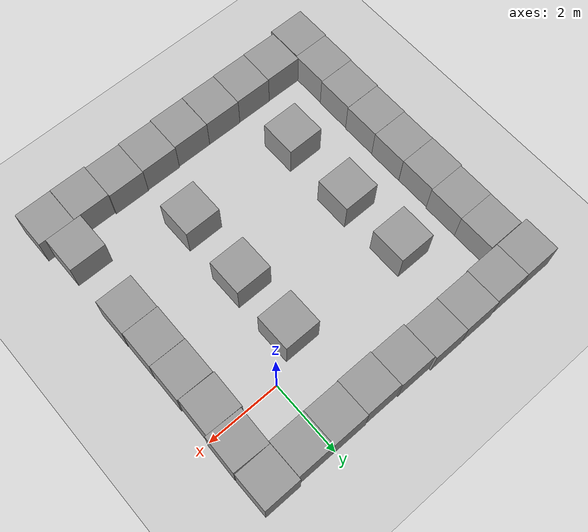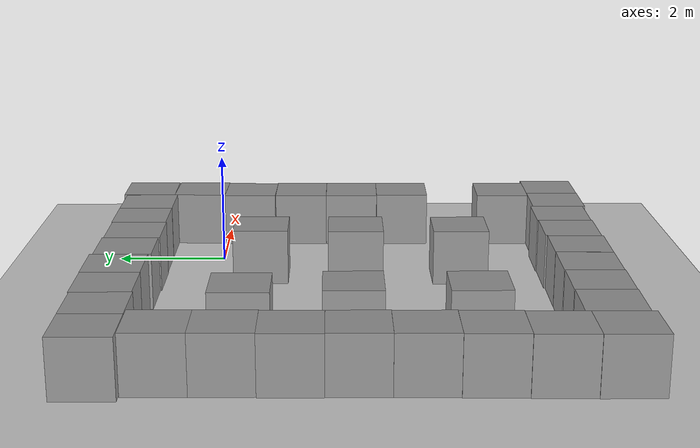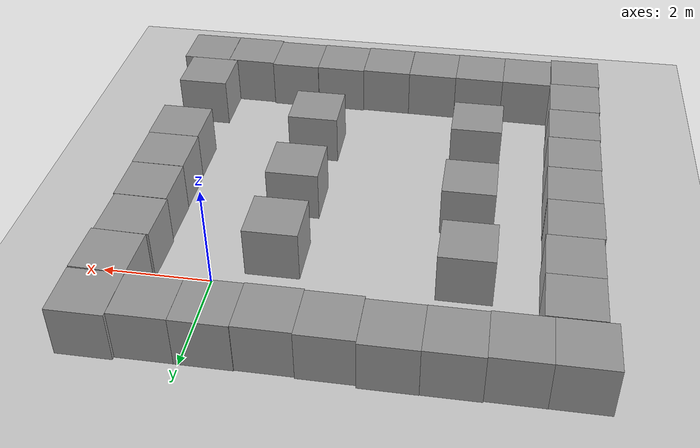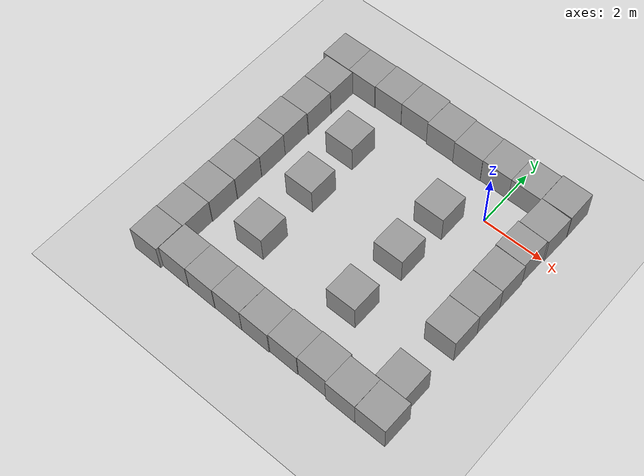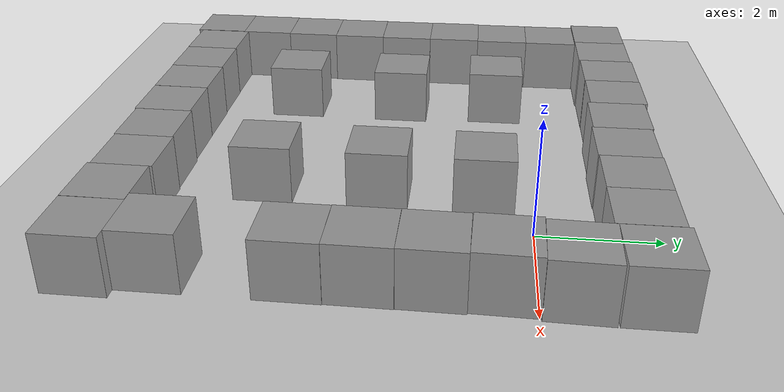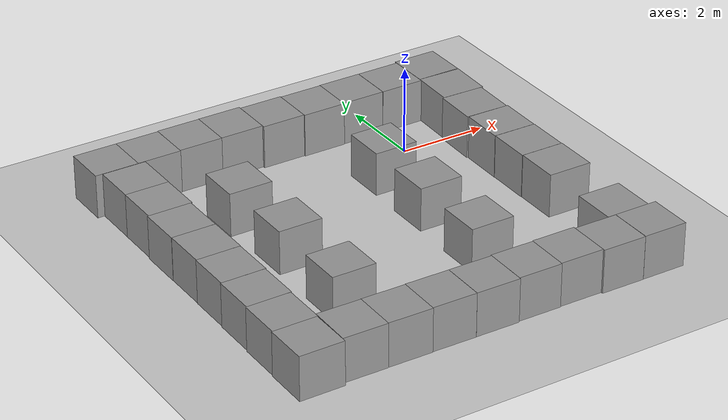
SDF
<sdf version="1.6">
 <world name="default">
  <light name="sun" type="directional">
   <pose>0 0 10 0 -0 0</pose>
   <diffuse>0.8 0.8 0.8 1</diffuse>
   <specular>0.1 0.1 0.1 1</specular>
   <attenuation>
    <range>1000</range>
    <constant>0.9</constant>
    <linear>0.01</linear>
    <quadratic>0.001</quadratic>
   </attenuation>
   <direction>-0.5 0.5 -1</direction>
  </light>
  <model name="ground_plane">
   <static>1</static>
   <link name="link">
    <collision name="collision">
     <geometry><plane><normal>0 0 1</normal><size>100 100</size></plane></geometry>
     <surface><friction><ode><mu>100</mu><mu2>50</mu2></ode></friction></surface>
    </collision>
    <visual name="visual">
     <cast_shadows>0</cast_shadows>
     <geometry><plane><normal>0 0 1</normal><size>100 100</size></plane></geometry>
     <material>
      <script><uri>file://media/materials/scripts/gazebo.material</uri><name>Gazebo/Grey</name></script>
     </material>
    </visual>
   </link>
  </model>
  <gravity>0 0 -9.8</gravity>
  <magnetic_field>6e-06 2.3e-05 -4.2e-05</magnetic_field>
  <atmosphere type="adiabatic"/>
  <physics name="default_physics" default="0" type="ode">
   <max_step_size>0.001</max_step_size>
   <real_time_factor>1</real_time_factor>
   <real_time_update_rate>1000</real_time_update_rate>
  </physics>
  <scene><ambient>0.4 0.4 0.4 1</ambient><background>0.7 0.7 0.7 1</background><shadows>1</shadows></scene>
  <spherical_coordinates>
   <surface_model>EARTH_WGS84</surface_model>
   <latitude_deg>0</latitude_deg>
   <longitude_deg>0</longitude_deg>
   <elevation>0</elevation>
   <heading_deg>0</heading_deg>
  </spherical_coordinates>
  <model name="unit_box_0_10">
   <pose>-0.421892 1.49598 0.499995 0 -1e-05 0.000849</pose>
   <link name="link">
    <inertial>
     <mass>1</mass>
     <inertia>
      <ixx>0.166667</ixx>
      <ixy>0</ixy>
      <ixz>0</ixz>
      <iyy>0.166667</iyy>
      <iyz>0</iyz>
      <izz>0.166667</izz>
     </inertia>
    </inertial>
    <collision name="collision"><geometry><box><size>1 1 1</size></box></geometry></collision>
    <visual name="visual">
     <geometry><box><size>1 1 1</size></box></geometry>
     <material>
      <script><name>Gazebo/Grey</name><uri>file://media/materials/scripts/gazebo.material</uri></script>
     </material>
    </visual>
   </link>
  </model>
  <model name="unit_box_0_11">
   <pose>-1.42189 1.48093 0.499995 1e-05 -0 0.000861</pose>
   <link name="link">
    <inertial>
     <mass>1</mass>
     <inertia>
      <ixx>0.166667</ixx>
      <ixy>0</ixy>
      <ixz>0</ixz>
      <iyy>0.166667</iyy>
      <iyz>0</iyz>
      <izz>0.166667</izz>
     </inertia>
    </inertial>
    <collision name="collision"><geometry><box><size>1 1 1</size></box></geometry></collision>
    <visual name="visual">
     <geometry><box><size>1 1 1</size></box></geometry>
     <material>
      <script><name>Gazebo/Grey</name><uri>file://media/materials/scripts/gazebo.material</uri></script>
     </material>
    </visual>
   </link>
  </model>
  <model name="unit_box_0_12">
   <pose>0.578477 1.49485 0.499995 1e-05 -0 0.000904</pose>
   <link name="link">
    <inertial>
     <mass>1</mass>
     <inertia>
      <ixx>0.166667</ixx>
      <ixy>0</ixy>
      <ixz>0</ixz>
      <iyy>0.166667</iyy>
      <iyz>0</iyz>
      <izz>0.166667</izz>
     </inertia>
    </inertial>
    <collision name="collision"><geometry><box><size>1 1 1</size></box></geometry></collision>
    <visual name="visual">
     <geometry><box><size>1 1 1</size></box></geometry>
     <material>
      <script><name>Gazebo/Grey</name><uri>file://media/materials/scripts/gazebo.material</uri></script>
     </material>
    </visual>
   </link>
  </model>
  <model name="unit_box_0_13">
   <pose>1.58058 1.55396 0.499995 1e-05 -0 7.7e-05</pose>
   <link name="link">
    <inertial>
     <mass>1</mass>
     <inertia>
      <ixx>0.166667</ixx>
      <ixy>0</ixy>
      <ixz>0</ixz>
      <iyy>0.166667</iyy>
      <iyz>0</iyz>
      <izz>0.166667</izz>
     </inertia>
    </inertial>
    <collision name="collision"><geometry><box><size>1 1 1</size></box></geometry></collision>
    <visual name="visual">
     <geometry><box><size>1 1 1</size></box></geometry>
     <material>
      <script><name>Gazebo/Grey</name><uri>file://media/materials/scripts/gazebo.material</uri></script>
     </material>
    </visual>
   </link>
  </model>
  <model name="unit_box_0_14">
   <pose>1.56772 0.539836 0.499995 1e-05 0 -0.028566</pose>
   <link name="link">
    <inertial>
     <mass>1</mass>
     <inertia>
      <ixx>0.166667</ixx>
      <ixy>0</ixy>
      <ixz>0</ixz>
      <iyy>0.166667</iyy>
      <iyz>0</iyz>
      <izz>0.166667</izz>
     </inertia>
    </inertial>
    <collision name="collision"><geometry><box><size>1 1 1</size></box></geometry></collision>
    <visual name="visual">
     <geometry><box><size>1 1 1</size></box></geometry>
     <material>
      <script><name>Gazebo/Grey</name><uri>file://media/materials/scripts/gazebo.material</uri></script>
     </material>
    </visual>
   </link>
  </model>
  <model name="unit_box_0_15">
   <pose>1.5008 -0.460723 0.499995 0 -1e-05 -0.024448</pose>
   <link name="link">
    <inertial>
     <mass>1</mass>
     <inertia>
      <ixx>0.166667</ixx>
      <ixy>0</ixy>
      <ixz>0</ixz>
      <iyy>0.166667</iyy>
      <iyz>0</iyz>
      <izz>0.166667</izz>
     </inertia>
    </inertial>
    <collision name="collision"><geometry><box><size>1 1 1</size></box></geometry></collision>
    <visual name="visual">
     <geometry><box><size>1 1 1</size></box></geometry>
     <material>
      <script><name>Gazebo/Grey</name><uri>file://media/materials/scripts/gazebo.material</uri></script>
     </material>
    </visual>
   </link>
  </model>
  <model name="unit_box_0_16">
   <pose>1.50782 -1.46626 0.499995 0 -1e-05 -0.013703</pose>
   <link name="link">
    <inertial>
     <mass>1</mass>
     <inertia>
      <ixx>0.166667</ixx>
      <ixy>0</ixy>
      <ixz>0</ixz>
      <iyy>0.166667</iyy>
      <iyz>0</iyz>
      <izz>0.166667</izz>
     </inertia>
    </inertial>
    <collision name="collision"><geometry><box><size>1 1 1</size></box></geometry></collision>
    <visual name="visual">
     <geometry><box><size>1 1 1</size></box></geometry>
     <material>
      <script><name>Gazebo/Grey</name><uri>file://media/materials/scripts/gazebo.material</uri></script>
     </material>
    </visual>
   </link>
  </model>
  <model name="unit_box_0_17">
   <pose>1.50395 -2.46873 0.5 0 0 -0.008767</pose>
   <link name="link">
    <inertial>
     <mass>1</mass>
     <inertia>
      <ixx>0.166667</ixx>
      <ixy>0</ixy>
      <ixz>0</ixz>
      <iyy>0.166667</iyy>
      <iyz>0</iyz>
      <izz>0.166667</izz>
     </inertia>
    </inertial>
    <collision name="collision"><geometry><box><size>1 1 1</size></box></geometry></collision>
    <visual name="visual">
     <geometry><box><size>1 1 1</size></box></geometry>
     <material>
      <script><name>Gazebo/Grey</name><uri>file://media/materials/scripts/gazebo.material</uri></script>
     </material>
    </visual>
   </link>
  </model>
  <model name="unit_box_0_18">
   <pose>1.506 -3.46985 0.499995 0 1e-05 -0.006664</pose>
   <link name="link">
    <inertial>
     <mass>1</mass>
     <inertia>
      <ixx>0.166667</ixx>
      <ixy>0</ixy>
      <ixz>0</ixz>
      <iyy>0.166667</iyy>
      <iyz>0</iyz>
      <izz>0.166667</izz>
     </inertia>
    </inertial>
    <collision name="collision"><geometry><box><size>1 1 1</size></box></geometry></collision>
    <visual name="visual">
     <geometry><box><size>1 1 1</size></box></geometry>
     <material>
      <script><name>Gazebo/Grey</name><uri>file://media/materials/scripts/gazebo.material</uri></script>
     </material>
    </visual>
   </link>
  </model>
  <model name="unit_box_0_30">
   <pose>1.48426 -5.46986 0.499995 0 1e-05 -0.006967</pose>
   <link name="link">
    <inertial>
     <mass>1</mass>
     <inertia>
      <ixx>0.166667</ixx>
      <ixy>0</ixy>
      <ixz>0</ixz>
      <iyy>0.166667</iyy>
      <iyz>0</iyz>
      <izz>0.166667</izz>
     </inertia>
    </inertial>
    <collision name="collision"><geometry><box><size>1 1 1</size></box></geometry></collision>
    <visual name="visual">
     <geometry><box><size>1 1 1</size></box></geometry>
     <material>
      <script><name>Gazebo/Grey</name><uri>file://media/materials/scripts/gazebo.material</uri></script>
     </material>
    </visual>
   </link>
  </model>
  <model name="unit_box_0_31">
   <pose>1.66084 -6.47112 0.5 0 0 -0.006969</pose>
   <link name="link">
    <inertial>
     <mass>1</mass>
     <inertia>
      <ixx>0.166667</ixx>
      <ixy>0</ixy>
      <ixz>0</ixz>
      <iyy>0.166667</iyy>
      <iyz>0</iyz>
      <izz>0.166667</izz>
     </inertia>
    </inertial>
    <collision name="collision"><geometry><box><size>1 1 1</size></box></geometry></collision>
    <visual name="visual">
     <geometry><box><size>1 1 1</size></box></geometry>
     <material>
      <script><name>Gazebo/Grey</name><uri>file://media/materials/scripts/gazebo.material</uri></script>
     </material>
    </visual>
   </link>
  </model>
  <model name="unit_box_0_32">
   <pose>0.658484 -6.46631 0.5 0 0 -0.011692</pose>
   <link name="link">
    <inertial>
     <mass>1</mass>
     <inertia>
      <ixx>0.166667</ixx>
      <ixy>0</ixy>
      <ixz>0</ixz>
      <iyy>0.166667</iyy>
      <iyz>0</iyz>
      <izz>0.166667</izz>
     </inertia>
    </inertial>
    <collision name="collision"><geometry><box><size>1 1 1</size></box></geometry></collision>
    <visual name="visual">
     <geometry><box><size>1 1 1</size></box></geometry>
     <material>
      <script><name>Gazebo/Grey</name><uri>file://media/materials/scripts/gazebo.material</uri></script>
     </material>
    </visual>
   </link>
  </model>
  <model name="unit_box_0_33">
   <pose>-0.340965 -6.41076 0.5 0 0 -0.011746</pose>
   <link name="link">
    <inertial>
     <mass>1</mass>
     <inertia>
      <ixx>0.166667</ixx>
      <ixy>0</ixy>
      <ixz>0</ixz>
      <iyy>0.166667</iyy>
      <iyz>0</iyz>
      <izz>0.166667</izz>
     </inertia>
    </inertial>
    <collision name="collision"><geometry><box><size>1 1 1</size></box></geometry></collision>
    <visual name="visual">
     <geometry><box><size>1 1 1</size></box></geometry>
     <material>
      <script><name>Gazebo/Grey</name><uri>file://media/materials/scripts/gazebo.material</uri></script>
     </material>
    </visual>
   </link>
  </model>
  <model name="unit_box_0_34">
   <pose>-1.34112 -6.41669 0.499995 1e-05 0 -0.011778</pose>
   <link name="link">
    <inertial>
     <mass>1</mass>
     <inertia>
      <ixx>0.166667</ixx>
      <ixy>0</ixy>
      <ixz>0</ixz>
      <iyy>0.166667</iyy>
      <iyz>0</iyz>
      <izz>0.166667</izz>
     </inertia>
    </inertial>
    <collision name="collision"><geometry><box><size>1 1 1</size></box></geometry></collision>
    <visual name="visual">
     <geometry><box><size>1 1 1</size></box></geometry>
     <material>
      <script><name>Gazebo/Grey</name><uri>file://media/materials/scripts/gazebo.material</uri></script>
     </material>
    </visual>
   </link>
  </model>
  <model name="unit_box_0_35">
   <pose>-2.34187 -6.43251 0.5 0 0 -0.012736</pose>
   <link name="link">
    <inertial>
     <mass>1</mass>
     <inertia>
      <ixx>0.166667</ixx>
      <ixy>0</ixy>
      <ixz>0</ixz>
      <iyy>0.166667</iyy>
      <iyz>0</iyz>
      <izz>0.166667</izz>
     </inertia>
    </inertial>
    <collision name="collision"><geometry><box><size>1 1 1</size></box></geometry></collision>
    <visual name="visual">
     <geometry><box><size>1 1 1</size></box></geometry>
     <material>
      <script><name>Gazebo/Grey</name><uri>file://media/materials/scripts/gazebo.material</uri></script>
     </material>
    </visual>
   </link>
  </model>
  <model name="unit_box_0_36">
   <pose>-3.3432 -6.42124 0.499995 0 -1e-05 -0.015514</pose>
   <link name="link">
    <inertial>
     <mass>1</mass>
     <inertia>
      <ixx>0.166667</ixx>
      <ixy>0</ixy>
      <ixz>0</ixz>
      <iyy>0.166667</iyy>
      <iyz>0</iyz>
      <izz>0.166667</izz>
     </inertia>
    </inertial>
    <collision name="collision"><geometry><box><size>1 1 1</size></box></geometry></collision>
    <visual name="visual">
     <geometry><box><size>1 1 1</size></box></geometry>
     <material>
      <script><name>Gazebo/Grey</name><uri>file://media/materials/scripts/gazebo.material</uri></script>
     </material>
    </visual>
   </link>
  </model>
  <model name="unit_box_0_38">
   <pose>-4.34325 -6.4169 0.499995 0 1e-05 -0.015522</pose>
   <link name="link">
    <inertial>
     <mass>1</mass>
     <inertia>
      <ixx>0.166667</ixx>
      <ixy>0</ixy>
      <ixz>0</ixz>
      <iyy>0.166667</iyy>
      <iyz>0</iyz>
      <izz>0.166667</izz>
     </inertia>
    </inertial>
    <collision name="collision"><geometry><box><size>1 1 1</size></box></geometry></collision>
    <visual name="visual">
     <geometry><box><size>1 1 1</size></box></geometry>
     <material>
      <script><name>Gazebo/Grey</name><uri>file://media/materials/scripts/gazebo.material</uri></script>
     </material>
    </visual>
   </link>
  </model>
  <model name="unit_box_0_39">
   <pose>-5.34328 -6.41024 0.499995 -1e-05 -0 -0.015526</pose>
   <link name="link">
    <inertial>
     <mass>1</mass>
     <inertia>
      <ixx>0.166667</ixx>
      <ixy>0</ixy>
      <ixz>0</ixz>
      <iyy>0.166667</iyy>
      <iyz>0</iyz>
      <izz>0.166667</izz>
     </inertia>
    </inertial>
    <collision name="collision"><geometry><box><size>1 1 1</size></box></geometry></collision>
    <visual name="visual">
     <geometry><box><size>1 1 1</size></box></geometry>
     <material>
      <script><name>Gazebo/Grey</name><uri>file://media/materials/scripts/gazebo.material</uri></script>
     </material>
    </visual>
   </link>
  </model>
  <model name="unit_box_0_40">
   <pose>-6.35595 -6.48989 0.5 0 0 -0.002433</pose>
   <link name="link">
    <inertial>
     <mass>1</mass>
     <inertia>
      <ixx>0.166667</ixx>
      <ixy>0</ixy>
      <ixz>0</ixz>
      <iyy>0.166667</iyy>
      <iyz>0</iyz>
      <izz>0.166667</izz>
     </inertia>
    </inertial>
    <collision name="collision"><geometry><box><size>1 1 1</size></box></geometry></collision>
    <visual name="visual">
     <geometry><box><size>1 1 1</size></box></geometry>
     <material>
      <script><name>Gazebo/Grey</name><uri>file://media/materials/scripts/gazebo.material</uri></script>
     </material>
    </visual>
   </link>
  </model>
  <model name="unit_box_0_41">
   <pose>-6.33563 -5.48992 0.499995 0 1e-05 -0.002416</pose>
   <link name="link">
    <inertial>
     <mass>1</mass>
     <inertia>
      <ixx>0.166667</ixx>
      <ixy>0</ixy>
      <ixz>0</ixz>
      <iyy>0.166667</iyy>
      <iyz>0</iyz>
      <izz>0.166667</izz>
     </inertia>
    </inertial>
    <collision name="collision"><geometry><box><size>1 1 1</size></box></geometry></collision>
    <visual name="visual">
     <geometry><box><size>1 1 1</size></box></geometry>
     <material>
      <script><name>Gazebo/Grey</name><uri>file://media/materials/scripts/gazebo.material</uri></script>
     </material>
    </visual>
   </link>
  </model>
  <model name="unit_box_0_42">
   <pose>-6.31365 -4.48967 0.499995 0 1e-05 -0.001812</pose>
   <link name="link">
    <inertial>
     <mass>1</mass>
     <inertia>
      <ixx>0.166667</ixx>
      <ixy>0</ixy>
      <ixz>0</ixz>
      <iyy>0.166667</iyy>
      <iyz>0</iyz>
      <izz>0.166667</izz>
     </inertia>
    </inertial>
    <collision name="collision"><geometry><box><size>1 1 1</size></box></geometry></collision>
    <visual name="visual">
     <geometry><box><size>1 1 1</size></box></geometry>
     <material>
      <script><name>Gazebo/Grey</name><uri>file://media/materials/scripts/gazebo.material</uri></script>
     </material>
    </visual>
   </link>
  </model>
  <model name="unit_box_0_43">
   <pose>-6.29683 -3.48885 0.499995 1e-05 -0 -0.000123</pose>
   <link name="link">
    <inertial>
     <mass>1</mass>
     <inertia>
      <ixx>0.166667</ixx>
      <ixy>0</ixy>
      <ixz>0</ixz>
      <iyy>0.166667</iyy>
      <iyz>0</iyz>
      <izz>0.166667</izz>
     </inertia>
    </inertial>
    <collision name="collision"><geometry><box><size>1 1 1</size></box></geometry></collision>
    <visual name="visual">
     <geometry><box><size>1 1 1</size></box></geometry>
     <material>
      <script><name>Gazebo/Grey</name><uri>file://media/materials/scripts/gazebo.material</uri></script>
     </material>
    </visual>
   </link>
  </model>
  <model name="unit_box_0_44">
   <pose>-6.28773 -2.48852 0.499995 0 1e-05 0.000517</pose>
   <link name="link">
    <inertial>
     <mass>1</mass>
     <inertia>
      <ixx>0.166667</ixx>
      <ixy>0</ixy>
      <ixz>0</ixz>
      <iyy>0.166667</iyy>
      <iyz>0</iyz>
      <izz>0.166667</izz>
     </inertia>
    </inertial>
    <collision name="collision"><geometry><box><size>1 1 1</size></box></geometry></collision>
    <visual name="visual">
     <geometry><box><size>1 1 1</size></box></geometry>
     <material>
      <script><name>Gazebo/Grey</name><uri>file://media/materials/scripts/gazebo.material</uri></script>
     </material>
    </visual>
   </link>
  </model>
  <model name="unit_box_0_45">
   <pose>-6.29357 -1.48838 0.5 -1e-06 -0 0.000796</pose>
   <link name="link">
    <inertial>
     <mass>1</mass>
     <inertia>
      <ixx>0.166667</ixx>
      <ixy>0</ixy>
      <ixz>0</ixz>
      <iyy>0.166667</iyy>
      <iyz>0</iyz>
      <izz>0.166667</izz>
     </inertia>
    </inertial>
    <collision name="collision"><geometry><box><size>1 1 1</size></box></geometry></collision>
    <visual name="visual">
     <geometry><box><size>1 1 1</size></box></geometry>
     <material>
      <script><name>Gazebo/Grey</name><uri>file://media/materials/scripts/gazebo.material</uri></script>
     </material>
    </visual>
   </link>
  </model>
  <model name="unit_box_0_46">
   <pose>-6.26656 -0.48826 0.5 0 -0 0.000993</pose>
   <link name="link">
    <inertial>
     <mass>1</mass>
     <inertia>
      <ixx>0.166667</ixx>
      <ixy>0</ixy>
      <ixz>0</ixz>
      <iyy>0.166667</iyy>
      <iyz>0</iyz>
      <izz>0.166667</izz>
     </inertia>
    </inertial>
    <collision name="collision"><geometry><box><size>1 1 1</size></box></geometry></collision>
    <visual name="visual">
     <geometry><box><size>1 1 1</size></box></geometry>
     <material>
      <script><name>Gazebo/Grey</name><uri>file://media/materials/scripts/gazebo.material</uri></script>
     </material>
    </visual>
   </link>
  </model>
  <model name="unit_box_0_47">
   <pose>-6.26408 0.511767 0.5 0 -0 0.001035</pose>
   <link name="link">
    <inertial>
     <mass>1</mass>
     <inertia>
      <ixx>0.166667</ixx>
      <ixy>0</ixy>
      <ixz>0</ixz>
      <iyy>0.166667</iyy>
      <iyz>0</iyz>
      <izz>0.166667</izz>
     </inertia>
    </inertial>
    <collision name="collision"><geometry><box><size>1 1 1</size></box></geometry></collision>
    <visual name="visual">
     <geometry><box><size>1 1 1</size></box></geometry>
     <material>
      <script><name>Gazebo/Grey</name><uri>file://media/materials/scripts/gazebo.material</uri></script>
     </material>
    </visual>
   </link>
  </model>
  <model name="unit_box_0_50">
   <pose>-6.42246 1.5235 0.499995 0 1e-05 0.001221</pose>
   <link name="link">
    <inertial>
     <mass>1</mass>
     <inertia>
      <ixx>0.166667</ixx>
      <ixy>0</ixy>
      <ixz>0</ixz>
      <iyy>0.166667</iyy>
      <iyz>0</iyz>
      <izz>0.166667</izz>
     </inertia>
    </inertial>
    <collision name="collision"><geometry><box><size>1 1 1</size></box></geometry></collision>
    <visual name="visual">
     <geometry><box><size>1 1 1</size></box></geometry>
     <material>
      <script><name>Gazebo/Grey</name><uri>file://media/materials/scripts/gazebo.material</uri></script>
     </material>
    </visual>
   </link>
  </model>
  <model name="unit_box_0_51">
   <pose>-5.42248 1.52677 0.499995 -0 -1e-05 0.001217</pose>
   <link name="link">
    <inertial>
     <mass>1</mass>
     <inertia>
      <ixx>0.166667</ixx>
      <ixy>0</ixy>
      <ixz>0</ixz>
      <iyy>0.166667</iyy>
      <iyz>0</iyz>
      <izz>0.166667</izz>
     </inertia>
    </inertial>
    <collision name="collision"><geometry><box><size>1 1 1</size></box></geometry></collision>
    <visual name="visual">
     <geometry><box><size>1 1 1</size></box></geometry>
     <material>
      <script><name>Gazebo/Grey</name><uri>file://media/materials/scripts/gazebo.material</uri></script>
     </material>
    </visual>
   </link>
  </model>
  <model name="unit_box_0_52">
   <pose>-4.4224 1.54835 0.499995 0 1e-05 0.001066</pose>
   <link name="link">
    <inertial>
     <mass>1</mass>
     <inertia>
      <ixx>0.166667</ixx>
      <ixy>0</ixy>
      <ixz>0</ixz>
      <iyy>0.166667</iyy>
      <iyz>0</iyz>
      <izz>0.166667</izz>
     </inertia>
    </inertial>
    <collision name="collision"><geometry><box><size>1 1 1</size></box></geometry></collision>
    <visual name="visual">
     <geometry><box><size>1 1 1</size></box></geometry>
     <material>
      <script><name>Gazebo/Grey</name><uri>file://media/materials/scripts/gazebo.material</uri></script>
     </material>
    </visual>
   </link>
  </model>
  <model name="unit_box_0_53">
   <pose>-3.42238 1.55506 0.499995 1e-05 0 0.001023</pose>
   <link name="link">
    <inertial>
     <mass>1</mass>
     <inertia>
      <ixx>0.166667</ixx>
      <ixy>0</ixy>
      <ixz>0</ixz>
      <iyy>0.166667</iyy>
      <iyz>0</iyz>
      <izz>0.166667</izz>
     </inertia>
    </inertial>
    <collision name="collision"><geometry><box><size>1 1 1</size></box></geometry></collision>
    <visual name="visual">
     <geometry><box><size>1 1 1</size></box></geometry>
     <material>
      <script><name>Gazebo/Grey</name><uri>file://media/materials/scripts/gazebo.material</uri></script>
     </material>
    </visual>
   </link>
  </model>
  <model name="unit_box_0_54">
   <pose>-2.42204 1.50422 0.499995 1e-05 -0 0.000743</pose>
   <link name="link">
    <inertial>
     <mass>1</mass>
     <inertia>
      <ixx>0.166667</ixx>
      <ixy>0</ixy>
      <ixz>0</ixz>
      <iyy>0.166667</iyy>
      <iyz>0</iyz>
      <izz>0.166667</izz>
     </inertia>
    </inertial>
    <collision name="collision"><geometry><box><size>1 1 1</size></box></geometry></collision>
    <visual name="visual">
     <geometry><box><size>1 1 1</size></box></geometry>
     <material>
      <script><name>Gazebo/Grey</name><uri>file://media/materials/scripts/gazebo.material</uri></script>
     </material>
    </visual>
   </link>
  </model>
  <model name="unit_box_0_57">
   <pose>-1.09408 -4.4231 0.499995 1e-05 -0 0</pose>
   <link name="link">
    <inertial>
     <mass>1</mass>
     <inertia>
      <ixx>0.166667</ixx>
      <ixy>0</ixy>
      <ixz>0</ixz>
      <iyy>0.166667</iyy>
      <iyz>0</iyz>
      <izz>0.166667</izz>
     </inertia>
    </inertial>
    <collision name="collision"><geometry><box><size>1 1 1</size></box></geometry></collision>
    <visual name="visual">
     <geometry><box><size>1 1 1</size></box></geometry>
     <material>
      <script><name>Gazebo/Grey</name><uri>file://media/materials/scripts/gazebo.material</uri></script>
     </material>
    </visual>
   </link>
  </model>
  <model name="unit_box_0_64">
   <pose>-4.39021 -4.47172 0.499995 1e-05 -0 0</pose>
   <link name="link">
    <inertial>
     <mass>1</mass>
     <inertia>
      <ixx>0.166667</ixx>
      <ixy>0</ixy>
      <ixz>0</ixz>
      <iyy>0.166667</iyy>
      <iyz>0</iyz>
      <izz>0.166667</izz>
     </inertia>
    </inertial>
    <collision name="collision"><geometry><box><size>1 1 1</size></box></geometry></collision>
    <visual name="visual">
     <geometry><box><size>1 1 1</size></box></geometry>
     <material>
      <script><name>Gazebo/Grey</name><uri>file://media/materials/scripts/gazebo.material</uri></script>
     </material>
    </visual>
   </link>
  </model>
  <model name="unit_box_0_65">
   <pose>-1.06284 -2.51627 0.499995 1e-05 -0 0</pose>
   <link name="link">
    <inertial>
     <mass>1</mass>
     <inertia>
      <ixx>0.166667</ixx>
      <ixy>0</ixy>
      <ixz>0</ixz>
      <iyy>0.166667</iyy>
      <iyz>0</iyz>
      <izz>0.166667</izz>
     </inertia>
    </inertial>
    <collision name="collision"><geometry><box><size>1 1 1</size></box></geometry></collision>
    <visual name="visual">
     <geometry><box><size>1 1 1</size></box></geometry>
     <material>
      <script><name>Gazebo/Grey</name><uri>file://media/materials/scripts/gazebo.material</uri></script>
     </material>
    </visual>
   </link>
  </model>
  <model name="unit_box_0_66">
   <pose>-1.04079 -0.782537 0.499995 0 1e-05 0</pose>
   <link name="link">
    <inertial>
     <mass>1</mass>
     <inertia>
      <ixx>0.166667</ixx>
      <ixy>0</ixy>
      <ixz>0</ixz>
      <iyy>0.166667</iyy>
      <iyz>0</iyz>
      <izz>0.166667</izz>
     </inertia>
    </inertial>
    <collision name="collision"><geometry><box><size>1 1 1</size></box></geometry></collision>
    <visual name="visual">
     <geometry><box><size>1 1 1</size></box></geometry>
     <material>
      <script><name>Gazebo/Grey</name><uri>file://media/materials/scripts/gazebo.material</uri></script>
     </material>
    </visual>
   </link>
  </model>
  <model name="unit_box_0_69">
   <pose>-4.37853 -2.43495 0.499995 1e-05 -0 0</pose>
   <link name="link">
    <inertial>
     <mass>1</mass>
     <inertia>
      <ixx>0.166667</ixx>
      <ixy>0</ixy>
      <ixz>0</ixz>
      <iyy>0.166667</iyy>
      <iyz>0</iyz>
      <izz>0.166667</izz>
     </inertia>
    </inertial>
    <collision name="collision"><geometry><box><size>1 1 1</size></box></geometry></collision>
    <visual name="visual">
     <geometry><box><size>1 1 1</size></box></geometry>
     <material>
      <script><name>Gazebo/Grey</name><uri>file://media/materials/scripts/gazebo.material</uri></script>
     </material>
    </visual>
   </link>
  </model>
  <model name="unit_box_0_70">
   <pose>-4.46647 -0.613832 0.499995 0 -1e-05 0</pose>
   <link name="link">
    <inertial>
     <mass>1</mass>
     <inertia>
      <ixx>0.166667</ixx>
      <ixy>0</ixy>
      <ixz>0</ixz>
      <iyy>0.166667</iyy>
      <iyz>0</iyz>
      <izz>0.166667</izz>
     </inertia>
    </inertial>
    <collision name="collision"><geometry><box><size>1 1 1</size></box></geometry></collision>
    <visual name="visual">
     <geometry><box><size>1 1 1</size></box></geometry>
     <material>
      <script><name>Gazebo/Grey</name><uri>file://media/materials/scripts/gazebo.material</uri></script>
     </material>
    </visual>
   </link>
  </model>
 </world>
</sdf>
